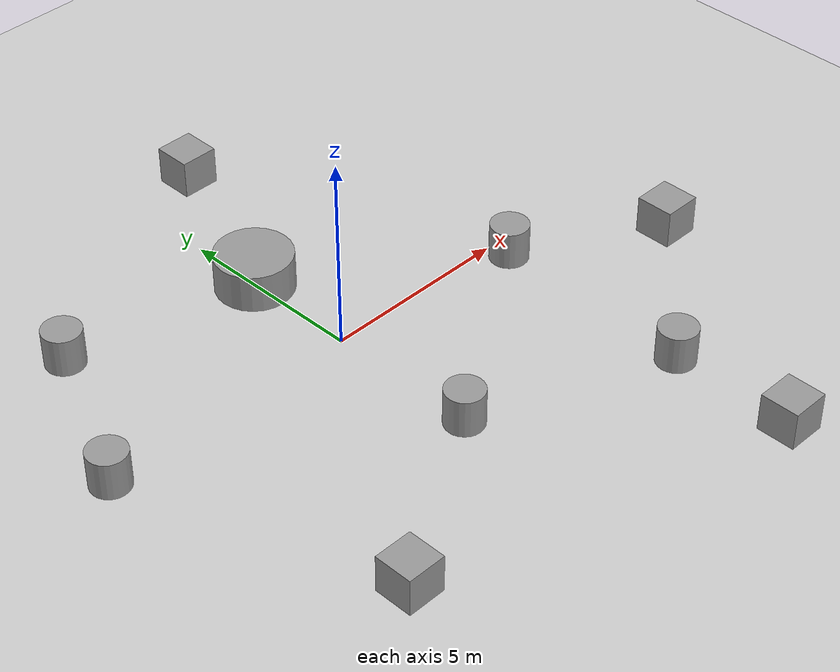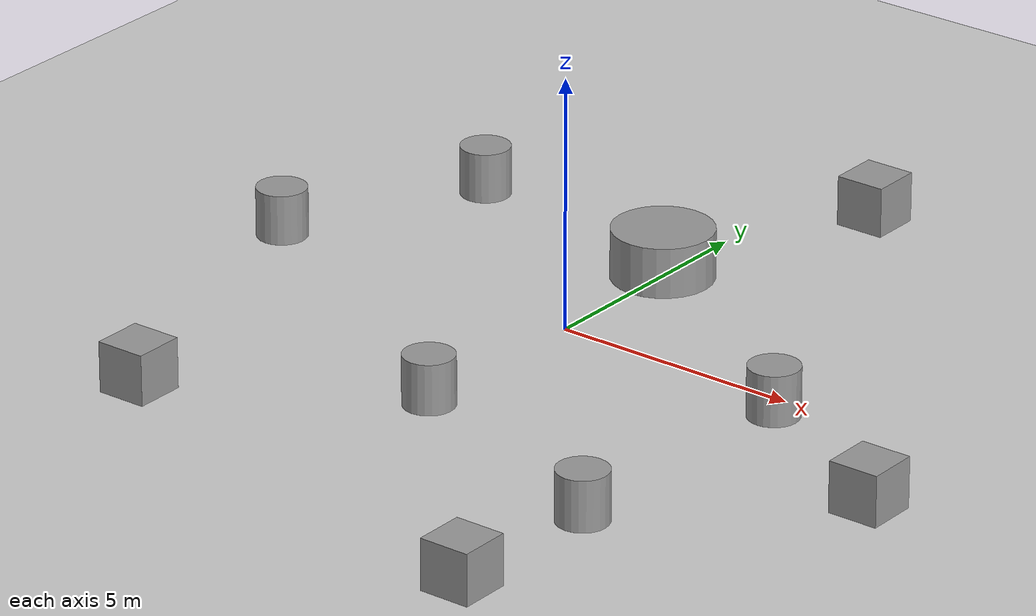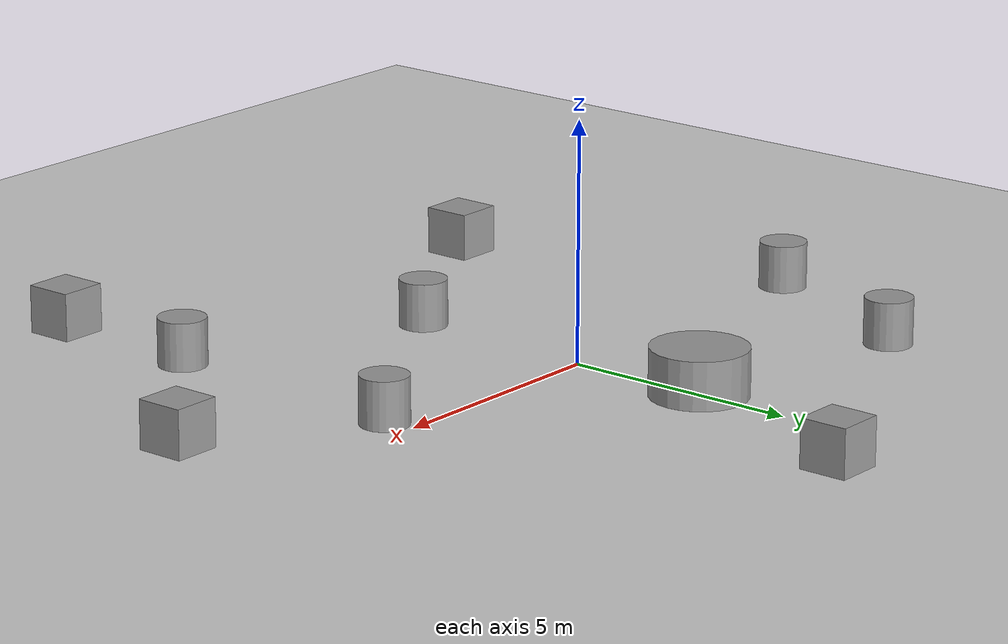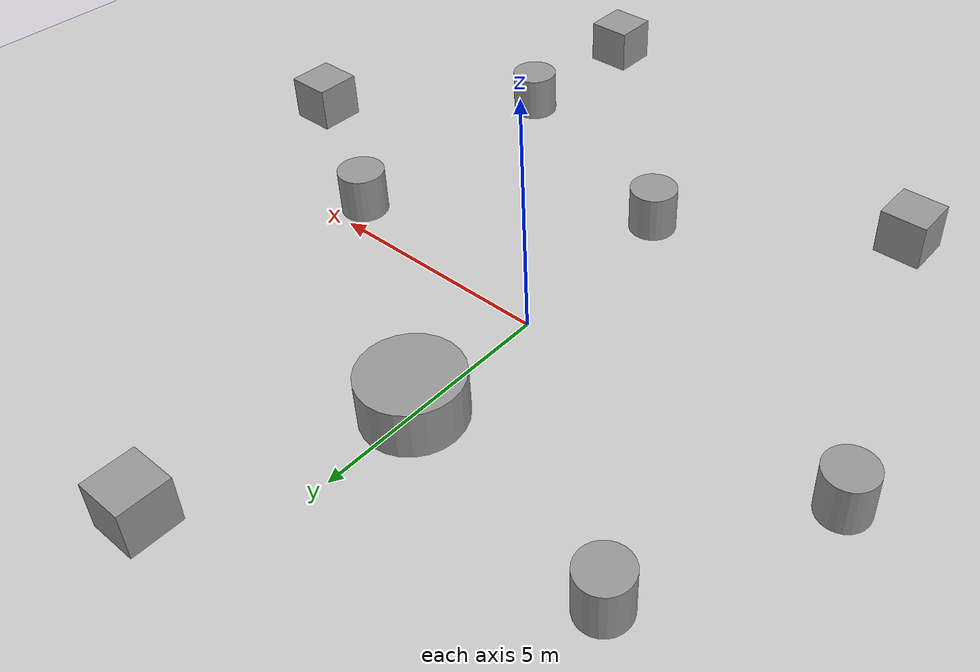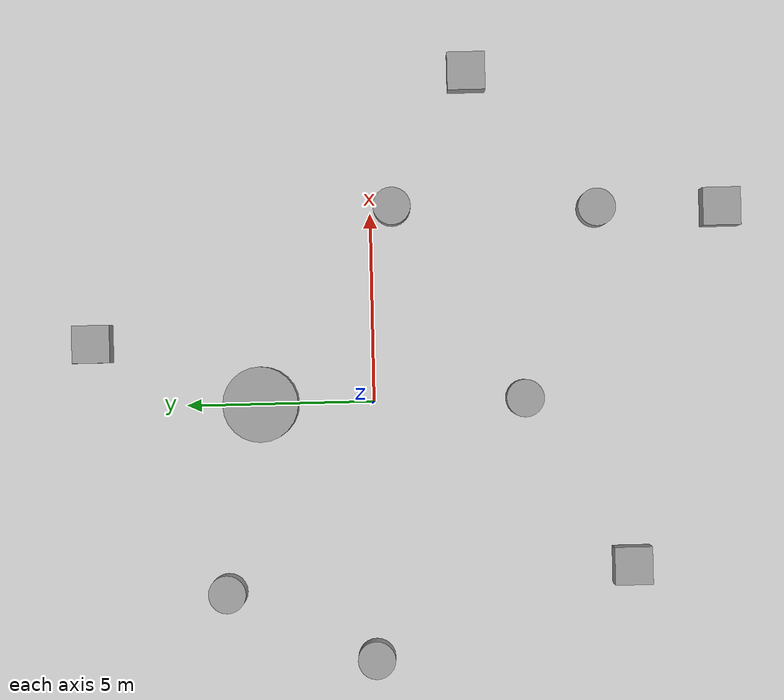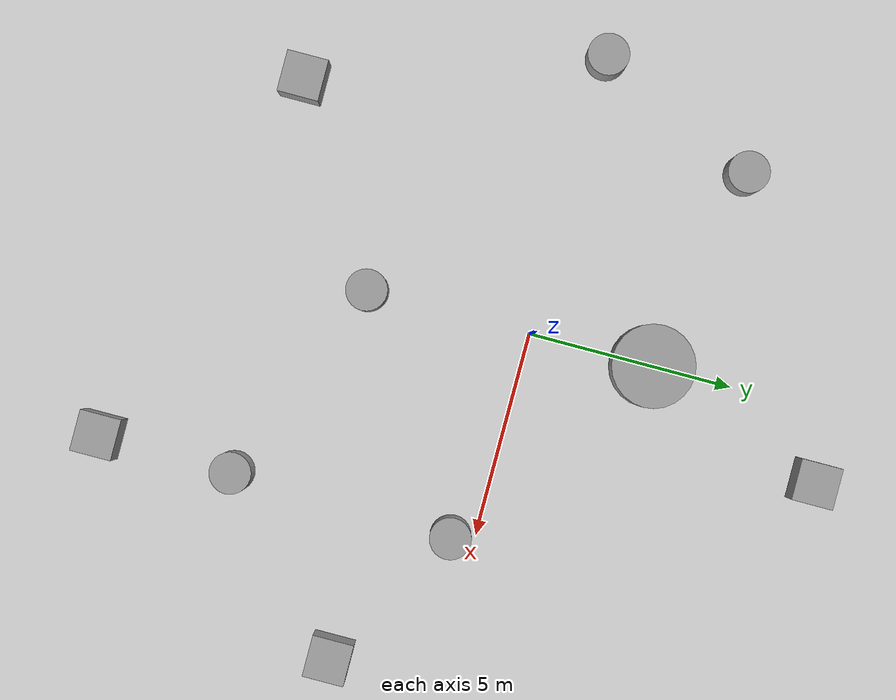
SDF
<sdf version="1.4">
 <world name="default">
  <physics type="ode">
   <gravity>0 0 -9.8</gravity>
   <ode>
    <solver><type>quick</type><iters>20</iters><sor>1</sor></solver>
    <constraints>
     <cfm>0</cfm>
     <erp>0.2</erp>
     <contact_max_correcting_vel>100</contact_max_correcting_vel>
     <contact_surface_layer>0</contact_surface_layer>
    </constraints>
   </ode>
   <max_step_size>0.001</max_step_size>
   <real_time_factor>1</real_time_factor>
   <real_time_update_rate>1000</real_time_update_rate>
  </physics>
  <light name="sun" type="directional">
   <pose>0 0 10 0 -0 0</pose>
   <diffuse>0.8 0.8 0.8 1</diffuse>
   <specular>0.2 0.2 0.2 1</specular>
   <attenuation>
    <range>1000</range>
    <constant>0.9</constant>
    <linear>0.01</linear>
    <quadratic>0.001</quadratic>
   </attenuation>
   <direction>-0.5 0.1 -0.9</direction>
  </light>
  <model name="ground_plane">
   <static>1</static>
   <link name="link">
    <collision name="collision">
     <geometry><plane><normal>0 0 1</normal><size>100 100</size></plane></geometry>
     <surface><friction><ode><mu>100</mu><mu2>50</mu2></ode></friction></surface>
    </collision>
    <visual name="visual">
     <cast_shadows>0</cast_shadows>
     <geometry><plane><normal>0 0 1</normal><size>100 100</size></plane></geometry>
     <material>
      <script><uri>file://media/materials/scripts/gazebo.material</uri><name>Gazebo/Grey</name></script>
     </material>
    </visual>
    <velocity_decay><linear>0</linear><angular>0</angular></velocity_decay>
   </link>
  </model>
  <scene><ambient>0.4 0.4 0.4 1</ambient><background>0.7 0.7 0.7 1</background><shadows>1</shadows></scene>
  <spherical_coordinates>
   <surface_model>EARTH_WGS84</surface_model>
   <latitude_deg>0</latitude_deg>
   <longitude_deg>0</longitude_deg>
   <elevation>0</elevation>
   <heading_deg>0</heading_deg>
  </spherical_coordinates>
  <model name="unit_box_1">
   <pose>8.68036 -2.63445 0.499993 1e-06 -3e-06 0.000901</pose>
   <link name="link">
    <inertial>
     <mass>1</mass>
     <inertia><ixx>1</ixx><ixy>0</ixy><ixz>0</ixz><iyy>1</iyy><iyz>0</iyz><izz>1</izz></inertia>
    </inertial>
    <collision name="collision"><geometry><box><size>1 1 1</size></box></geometry></collision>
    <visual name="visual">
     <geometry><box><size>1 1 1</size></box></geometry>
     <material>
      <script><uri>file://media/materials/scripts/gazebo.material</uri><name>Gazebo/Grey</name></script>
     </material>
    </visual>
    <velocity_decay><linear>0</linear><angular>0</angular></velocity_decay>
   </link>
   <static>0</static>
  </model>
  <model name="unit_box_2">
   <pose>4.94557 -9.2957 0.5 1e-06 -8.07794e-28 7e-06</pose>
   <link name="link">
    <inertial>
     <mass>1</mass>
     <inertia><ixx>1</ixx><ixy>0</ixy><ixz>0</ixz><iyy>1</iyy><iyz>0</iyz><izz>1</izz></inertia>
    </inertial>
    <collision name="collision"><geometry><box><size>1 1 1</size></box></geometry></collision>
    <visual name="visual">
     <geometry><box><size>1 1 1</size></box></geometry>
     <material>
      <script><uri>file://media/materials/scripts/gazebo.material</uri><name>Gazebo/Grey</name></script>
     </material>
    </visual>
    <velocity_decay><linear>0</linear><angular>0</angular></velocity_decay>
   </link>
   <static>0</static>
  </model>
  <model name="unit_cylinder_1">
   <pose>0 -4 0.499993 0 -0 -2e-06</pose>
   <link name="link">
    <inertial>
     <mass>1</mass>
     <inertia><ixx>1</ixx><ixy>0</ixy><ixz>0</ixz><iyy>1</iyy><iyz>0</iyz><izz>1</izz></inertia>
    </inertial>
    <collision name="collision">
     <geometry><cylinder><radius>0.5</radius><length>1</length></cylinder></geometry>
    </collision>
    <visual name="visual">
     <geometry><cylinder><radius>0.5</radius><length>1</length></cylinder></geometry>
     <material>
      <script><uri>file://media/materials/scripts/gazebo.material</uri><name>Gazebo/Grey</name></script>
     </material>
    </visual>
    <velocity_decay><linear>0</linear><angular>0</angular></velocity_decay>
   </link>
   <static>0</static>
  </model>
  <model name="unit_cylinder_3">
   <pose>5 -6 0.499997 0 0 -3e-06</pose>
   <link name="link">
    <inertial>
     <mass>1</mass>
     <inertia><ixx>1</ixx><ixy>0</ixy><ixz>0</ixz><iyy>1</iyy><iyz>0</iyz><izz>1</izz></inertia>
    </inertial>
    <collision name="collision">
     <geometry><cylinder><radius>0.5</radius><length>1</length></cylinder></geometry>
    </collision>
    <visual name="visual">
     <geometry><cylinder><radius>0.5</radius><length>1</length></cylinder></geometry>
     <material>
      <script><uri>file://media/materials/scripts/gazebo.material</uri><name>Gazebo/Grey</name></script>
     </material>
    </visual>
    <velocity_decay><linear>0</linear><angular>0</angular></velocity_decay>
   </link>
   <static>0</static>
  </model>
  <model name="unit_cylinder_4">
   <pose>5.15904 -0.585476 0.499997 2e-06 2e-06 -2e-06</pose>
   <link name="link">
    <inertial>
     <mass>1</mass>
     <inertia><ixx>1</ixx><ixy>0</ixy><ixz>0</ixz><iyy>1</iyy><iyz>0</iyz><izz>1</izz></inertia>
    </inertial>
    <collision name="collision">
     <geometry><cylinder><radius>0.5</radius><length>1</length></cylinder></geometry>
    </collision>
    <visual name="visual">
     <geometry><cylinder><radius>0.5</radius><length>1</length></cylinder></geometry>
     <material>
      <script><uri>file://media/materials/scripts/gazebo.material</uri><name>Gazebo/Grey</name></script>
     </material>
    </visual>
    <velocity_decay><linear>0</linear><angular>0</angular></velocity_decay>
   </link>
   <static>0</static>
  </model>
  <model name="unit_cylinder_5">
   <pose>-5 4 0.499997 0 0 -2e-06</pose>
   <link name="link">
    <inertial>
     <mass>1</mass>
     <inertia><ixx>1</ixx><ixy>0</ixy><ixz>0</ixz><iyy>1</iyy><iyz>0</iyz><izz>1</izz></inertia>
    </inertial>
    <collision name="collision">
     <geometry><cylinder><radius>0.5</radius><length>1</length></cylinder></geometry>
    </collision>
    <visual name="visual">
     <geometry><cylinder><radius>0.5</radius><length>1</length></cylinder></geometry>
     <material>
      <script><uri>file://media/materials/scripts/gazebo.material</uri><name>Gazebo/Grey</name></script>
     </material>
    </visual>
    <velocity_decay><linear>0</linear><angular>0</angular></velocity_decay>
   </link>
   <static>0</static>
  </model>
  <model name="unit_cylinder_6">
   <pose>-6.82902 0.089648 0.499998 0 0 -2e-06</pose>
   <link name="link">
    <inertial>
     <mass>1</mass>
     <inertia><ixx>1</ixx><ixy>0</ixy><ixz>0</ixz><iyy>1</iyy><iyz>0</iyz><izz>1</izz></inertia>
    </inertial>
    <collision name="collision">
     <geometry><cylinder><radius>0.5</radius><length>1</length></cylinder></geometry>
    </collision>
    <visual name="visual">
     <geometry><cylinder><radius>0.5</radius><length>1</length></cylinder></geometry>
     <material>
      <script><uri>file://media/materials/scripts/gazebo.material</uri><name>Gazebo/Grey</name></script>
     </material>
    </visual>
    <velocity_decay><linear>0</linear><angular>0</angular></velocity_decay>
   </link>
   <static>0</static>
  </model>
  <model name="unit_box_3">
   <pose>-4.49703 -6.7511 0.500002 1.29247e-26 4e-06 1.5e-05</pose>
   <link name="link">
    <inertial>
     <mass>1</mass>
     <inertia><ixx>1</ixx><ixy>0</ixy><ixz>0</ixz><iyy>1</iyy><iyz>0</iyz><izz>1</izz></inertia>
    </inertial>
    <collision name="collision"><geometry><box><size>1 1 1</size></box></geometry></collision>
    <visual name="visual">
     <geometry><box><size>1 1 1</size></box></geometry>
     <material>
      <script><uri>file://media/materials/scripts/gazebo.material</uri><name>Gazebo/Grey</name></script>
     </material>
    </visual>
    <velocity_decay><linear>0</linear><angular>0</angular></velocity_decay>
   </link>
   <static>0</static>
  </model>
  <model name="unit_box_4">
   <pose>1.69944 7.44267 0.5 2e-06 -0 0</pose>
   <link name="link">
    <inertial>
     <mass>1</mass>
     <inertia><ixx>1</ixx><ixy>0</ixy><ixz>0</ixz><iyy>1</iyy><iyz>0</iyz><izz>1</izz></inertia>
    </inertial>
    <collision name="collision"><geometry><box><size>1 1 1</size></box></geometry></collision>
    <visual name="visual">
     <geometry><box><size>1 1 1</size></box></geometry>
     <material>
      <script><uri>file://media/materials/scripts/gazebo.material</uri><name>Gazebo/Grey</name></script>
     </material>
    </visual>
    <velocity_decay><linear>0</linear><angular>0</angular></velocity_decay>
   </link>
   <static>0</static>
  </model>
  <model name="unit_cylinder_7">
   <pose>0 3 0.5 0 -0 0</pose>
   <link name="link">
    <inertial>
     <mass>1</mass>
     <inertia><ixx>1</ixx><ixy>0</ixy><ixz>0</ixz><iyy>1</iyy><iyz>0</iyz><izz>1</izz></inertia>
    </inertial>
    <collision name="collision">
     <geometry><cylinder><radius>1</radius><length>1</length></cylinder></geometry>
    </collision>
    <visual name="visual">
     <geometry><cylinder><radius>1</radius><length>1</length></cylinder></geometry>
     <material>
      <script><uri>file://media/materials/scripts/gazebo.material</uri><name>Gazebo/Grey</name></script>
     </material>
    </visual>
    <velocity_decay><linear>0</linear><angular>0</angular></velocity_decay>
   </link>
   <static>0</static>
  </model>
 </world>
</sdf>
